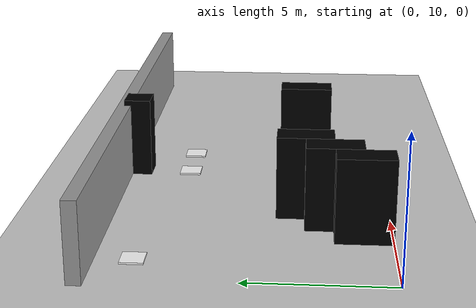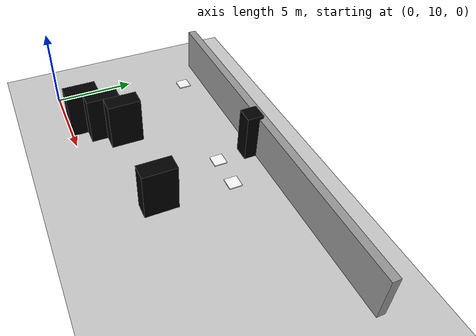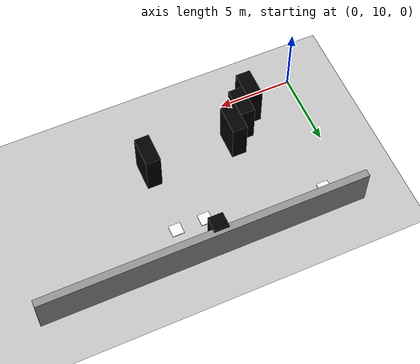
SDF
<sdf version="1.7">
 <world name="default">
  <model name="ground_plane">
   <static>1</static>
   <link name="link">
    <collision name="collision">
     <geometry><plane><normal>0 0 1</normal><size>100 100</size></plane></geometry>
     <surface><friction><ode><mu>100</mu><mu2>50</mu2></ode></friction></surface>
    </collision>
    <visual name="visual">
     <cast_shadows>0</cast_shadows>
     <geometry><plane><normal>0 0 1</normal><size>100 100</size></plane></geometry>
     <material>
      <script><uri>file://media/materials/scripts/gazebo.material</uri><name>Gazebo/Grey</name></script>
     </material>
    </visual>
   </link>
  </model>
  <model name="grey_wall_22_0">
   <link name="link">
    <pose>0 0 1.4 0 -0 0</pose>
    <inertial>
     <mass>1</mass>
     <inertia><ixx>1</ixx><ixy>0</ixy><ixz>0</ixz><iyy>1</iyy><iyz>0</iyz><izz>1</izz></inertia>
    </inertial>
    <visual name="visual">
     <cast_shadows>0</cast_shadows>
     <geometry><box><size>22 0.5 2.8</size></box></geometry>
     <material>
      <script>
       <uri>model://grey_wall/materials/scripts</uri>
       <uri>model://grey_wall/materials/textures</uri>
       <name>vrc/grey_wall</name>
      </script>
      <shader type="vertex"><normal_map>__default__</normal_map></shader>
      <ambient>1 1 1 1</ambient>
      <diffuse>1 1 1 1</diffuse>
      <specular>0 0 0 1</specular>
      <emissive>0 0 0 1</emissive>
     </material>
    </visual>
    <collision name="collision">
     <geometry><box><size>22 0.5 2.8</size></box></geometry>
     <surface>
      <friction>
       <ode><mu>1</mu><mu2>1</mu2><fdir1>0 0 0</fdir1><slip1>0</slip1><slip2>0</slip2></ode>
       <torsional>
        <coefficient>1</coefficient>
        <patch_radius>0</patch_radius>
        <surface_radius>0</surface_radius>
        <use_patch_radius>1</use_patch_radius>
        <ode><slip>0</slip></ode>
       </torsional>
      </friction>
      <bounce><restitution_coefficient>0</restitution_coefficient><threshold>1e+06</threshold></bounce>
      <contact>
       <collide_without_contact>0</collide_without_contact>
       <collide_without_contact_bitmask>1</collide_without_contact_bitmask>
       <collide_bitmask>1</collide_bitmask>
       <ode>
        <soft_cfm>0</soft_cfm>
        <soft_erp>0.2</soft_erp>
        <kp>1e+13</kp>
        <kd>1</kd>
        <max_vel>0.01</max_vel>
        <min_depth>0</min_depth>
       </ode>
       <bullet>
        <split_impulse>1</split_impulse>
        <split_impulse_penetration_threshold>-0.01</split_impulse_penetration_threshold>
        <soft_cfm>0</soft_cfm>
        <soft_erp>0.2</soft_erp>
        <kp>1e+13</kp>
        <kd>1</kd>
       </bullet>
      </contact>
     </surface>
    </collision>
   </link>
   <static>1</static>
   <pose>10.5 20 0 0 -0 0</pose>
  </model>
  <model name="brick_black_1x2_3">
   <link name="chassis">
    <pose>0 0 1.5 0 -0 0</pose>
    <inertial>
     <mass>1</mass>
     <inertia><ixx>1</ixx><ixy>0</ixy><ixz>0</ixz><iyy>1</iyy><iyz>0</iyz><izz>1</izz></inertia>
    </inertial>
    <visual name="visual">
     <geometry><mesh><uri>model://brick_box_3x1x3/meshes/simple_box.dae</uri><scale>1 2 3</scale></mesh></geometry>
     <material>
      <script>
       <uri>model://brick_box_3x1x3/materials/scripts</uri>
       <uri>model://brick_box_3x1x3/materials/textures</uri>
       <name>BrickBox/Diffuse</name>
      </script>
      <shader type="vertex"><normal_map>__default__</normal_map></shader>
      <ambient>0 0 0 1</ambient>
      <diffuse>0 0 0 1</diffuse>
      <specular>0 0 0 1</specular>
      <emissive>0 0 0 1</emissive>
      <lighting>1</lighting>
     </material>
    </visual>
    <collision name="collision">
     <geometry><box><size>1 2 3</size></box></geometry>
     <surface>
      <friction>
       <ode><mu>1</mu><mu2>1</mu2><fdir1>0 0 0</fdir1><slip1>0</slip1><slip2>0</slip2></ode>
       <torsional>
        <coefficient>1</coefficient>
        <patch_radius>0</patch_radius>
        <surface_radius>0</surface_radius>
        <use_patch_radius>1</use_patch_radius>
        <ode><slip>0</slip></ode>
       </torsional>
      </friction>
      <bounce><restitution_coefficient>0</restitution_coefficient><threshold>1e+06</threshold></bounce>
      <contact>
       <collide_without_contact>0</collide_without_contact>
       <collide_without_contact_bitmask>1</collide_without_contact_bitmask>
       <collide_bitmask>1</collide_bitmask>
       <ode>
        <soft_cfm>0</soft_cfm>
        <soft_erp>0.2</soft_erp>
        <kp>1e+13</kp>
        <kd>1</kd>
        <max_vel>0.01</max_vel>
        <min_depth>0</min_depth>
       </ode>
       <bullet>
        <split_impulse>1</split_impulse>
        <split_impulse_penetration_threshold>-0.01</split_impulse_penetration_threshold>
        <soft_cfm>0</soft_cfm>
        <soft_erp>0.2</soft_erp>
        <kp>1e+13</kp>
        <kd>1</kd>
       </bullet>
      </contact>
     </surface>
    </collision>
   </link>
   <static>1</static>
   <pose>11.5 13 0 0 -0 0</pose>
  </model>
  <model name="brick_black_1x2_4">
   <link name="chassis">
    <pose>0 0 1.5 0 -0 0</pose>
    <inertial>
     <mass>1</mass>
     <inertia><ixx>1</ixx><ixy>0</ixy><ixz>0</ixz><iyy>1</iyy><iyz>0</iyz><izz>1</izz></inertia>
    </inertial>
    <visual name="visual">
     <geometry><mesh><uri>model://brick_box_3x1x3/meshes/simple_box.dae</uri><scale>1 2 3</scale></mesh></geometry>
     <material>
      <script>
       <uri>model://brick_box_3x1x3/materials/scripts</uri>
       <uri>model://brick_box_3x1x3/materials/textures</uri>
       <name>BrickBox/Diffuse</name>
      </script>
      <shader type="vertex"><normal_map>__default__</normal_map></shader>
      <ambient>0 0 0 1</ambient>
      <diffuse>0 0 0 1</diffuse>
      <specular>0 0 0 1</specular>
      <emissive>0 0 0 1</emissive>
      <lighting>1</lighting>
     </material>
    </visual>
    <collision name="collision">
     <geometry><box><size>1 2 3</size></box></geometry>
     <surface>
      <friction>
       <ode><mu>1</mu><mu2>1</mu2><fdir1>0 0 0</fdir1><slip1>0</slip1><slip2>0</slip2></ode>
       <torsional>
        <coefficient>1</coefficient>
        <patch_radius>0</patch_radius>
        <surface_radius>0</surface_radius>
        <use_patch_radius>1</use_patch_radius>
        <ode><slip>0</slip></ode>
       </torsional>
      </friction>
      <bounce><restitution_coefficient>0</restitution_coefficient><threshold>1e+06</threshold></bounce>
      <contact>
       <collide_without_contact>0</collide_without_contact>
       <collide_without_contact_bitmask>1</collide_without_contact_bitmask>
       <collide_bitmask>1</collide_bitmask>
       <ode>
        <soft_cfm>0</soft_cfm>
        <soft_erp>0.2</soft_erp>
        <kp>1e+13</kp>
        <kd>1</kd>
        <max_vel>0.01</max_vel>
        <min_depth>0</min_depth>
       </ode>
       <bullet>
        <split_impulse>1</split_impulse>
        <split_impulse_penetration_threshold>-0.01</split_impulse_penetration_threshold>
        <soft_cfm>0</soft_cfm>
        <soft_erp>0.2</soft_erp>
        <kp>1e+13</kp>
        <kd>1</kd>
       </bullet>
      </contact>
     </surface>
    </collision>
   </link>
   <static>1</static>
   <pose>5.5 13 0 0 -0 0</pose>
  </model>
  <model name="brick_black_1x2_5">
   <link name="chassis">
    <pose>0 0 1.5 0 -0 0</pose>
    <inertial>
     <mass>1</mass>
     <inertia><ixx>1</ixx><ixy>0</ixy><ixz>0</ixz><iyy>1</iyy><iyz>0</iyz><izz>1</izz></inertia>
    </inertial>
    <visual name="visual">
     <geometry><mesh><uri>model://brick_box_3x1x3/meshes/simple_box.dae</uri><scale>1 2 3</scale></mesh></geometry>
     <material>
      <script>
       <uri>model://brick_box_3x1x3/materials/scripts</uri>
       <uri>model://brick_box_3x1x3/materials/textures</uri>
       <name>BrickBox/Diffuse</name>
      </script>
      <shader type="vertex"><normal_map>__default__</normal_map></shader>
      <ambient>0 0 0 1</ambient>
      <diffuse>0 0 0 1</diffuse>
      <specular>0 0 0 1</specular>
      <emissive>0 0 0 1</emissive>
      <lighting>1</lighting>
     </material>
    </visual>
    <collision name="collision">
     <geometry><box><size>1 2 3</size></box></geometry>
     <surface>
      <friction>
       <ode><mu>1</mu><mu2>1</mu2><fdir1>0 0 0</fdir1><slip1>0</slip1><slip2>0</slip2></ode>
       <torsional>
        <coefficient>1</coefficient>
        <patch_radius>0</patch_radius>
        <surface_radius>0</surface_radius>
        <use_patch_radius>1</use_patch_radius>
        <ode><slip>0</slip></ode>
       </torsional>
      </friction>
      <bounce><restitution_coefficient>0</restitution_coefficient><threshold>1e+06</threshold></bounce>
      <contact>
       <collide_without_contact>0</collide_without_contact>
       <collide_without_contact_bitmask>1</collide_without_contact_bitmask>
       <collide_bitmask>1</collide_bitmask>
       <ode>
        <soft_cfm>0</soft_cfm>
        <soft_erp>0.2</soft_erp>
        <kp>1e+13</kp>
        <kd>1</kd>
        <max_vel>0.01</max_vel>
        <min_depth>0</min_depth>
       </ode>
       <bullet>
        <split_impulse>1</split_impulse>
        <split_impulse_penetration_threshold>-0.01</split_impulse_penetration_threshold>
        <soft_cfm>0</soft_cfm>
        <soft_erp>0.2</soft_erp>
        <kp>1e+13</kp>
        <kd>1</kd>
       </bullet>
      </contact>
     </surface>
    </collision>
   </link>
   <static>1</static>
   <pose>4.5 12 0 0 -0 0</pose>
  </model>
  <model name="brick_black_1x2_6">
   <link name="chassis">
    <pose>0 0 1.5 0 -0 0</pose>
    <inertial>
     <mass>1</mass>
     <inertia><ixx>1</ixx><ixy>0</ixy><ixz>0</ixz><iyy>1</iyy><iyz>0</iyz><izz>1</izz></inertia>
    </inertial>
    <visual name="visual">
     <geometry><mesh><uri>model://brick_box_3x1x3/meshes/simple_box.dae</uri><scale>1 2 3</scale></mesh></geometry>
     <material>
      <script>
       <uri>model://brick_box_3x1x3/materials/scripts</uri>
       <uri>model://brick_box_3x1x3/materials/textures</uri>
       <name>BrickBox/Diffuse</name>
      </script>
      <shader type="vertex"><normal_map>__default__</normal_map></shader>
      <ambient>0 0 0 1</ambient>
      <diffuse>0 0 0 1</diffuse>
      <specular>0 0 0 1</specular>
      <emissive>0 0 0 1</emissive>
      <lighting>1</lighting>
     </material>
    </visual>
    <collision name="collision">
     <geometry><box><size>1 2 3</size></box></geometry>
     <surface>
      <friction>
       <ode><mu>1</mu><mu2>1</mu2><fdir1>0 0 0</fdir1><slip1>0</slip1><slip2>0</slip2></ode>
       <torsional>
        <coefficient>1</coefficient>
        <patch_radius>0</patch_radius>
        <surface_radius>0</surface_radius>
        <use_patch_radius>1</use_patch_radius>
        <ode><slip>0</slip></ode>
       </torsional>
      </friction>
      <bounce><restitution_coefficient>0</restitution_coefficient><threshold>1e+06</threshold></bounce>
      <contact>
       <collide_without_contact>0</collide_without_contact>
       <collide_without_contact_bitmask>1</collide_without_contact_bitmask>
       <collide_bitmask>1</collide_bitmask>
       <ode>
        <soft_cfm>0</soft_cfm>
        <soft_erp>0.2</soft_erp>
        <kp>1e+13</kp>
        <kd>1</kd>
        <max_vel>0.01</max_vel>
        <min_depth>0</min_depth>
       </ode>
       <bullet>
        <split_impulse>1</split_impulse>
        <split_impulse_penetration_threshold>-0.01</split_impulse_penetration_threshold>
        <soft_cfm>0</soft_cfm>
        <soft_erp>0.2</soft_erp>
        <kp>1e+13</kp>
        <kd>1</kd>
       </bullet>
      </contact>
     </surface>
    </collision>
   </link>
   <static>1</static>
   <pose>3.5 11 0 0 -0 0</pose>
  </model>
  <model name="brick_black_1x1_4">
   <link name="chassis">
    <pose>0 0 1.5 0 -0 0</pose>
    <inertial>
     <mass>1</mass>
     <inertia><ixx>1</ixx><ixy>0</ixy><ixz>0</ixz><iyy>1</iyy><iyz>0</iyz><izz>1</izz></inertia>
    </inertial>
    <visual name="visual">
     <geometry><mesh><uri>model://brick_box_3x1x3/meshes/simple_box.dae</uri><scale>1 1 3</scale></mesh></geometry>
     <material>
      <script>
       <uri>model://brick_box_3x1x3/materials/scripts</uri>
       <uri>model://brick_box_3x1x3/materials/textures</uri>
       <name>BrickBox/Diffuse</name>
      </script>
      <shader type="vertex"><normal_map>__default__</normal_map></shader>
      <ambient>0 0 0 1</ambient>
      <diffuse>0 0 0 1</diffuse>
      <specular>0 0 0 1</specular>
      <emissive>0 0 0 1</emissive>
      <lighting>1</lighting>
     </material>
    </visual>
    <collision name="collision">
     <geometry><box><size>1 1 3</size></box></geometry>
     <surface>
      <friction>
       <ode><mu>1</mu><mu2>1</mu2><fdir1>0 0 0</fdir1><slip1>0</slip1><slip2>0</slip2></ode>
       <torsional>
        <coefficient>1</coefficient>
        <patch_radius>0</patch_radius>
        <surface_radius>0</surface_radius>
        <use_patch_radius>1</use_patch_radius>
        <ode><slip>0</slip></ode>
       </torsional>
      </friction>
      <bounce><restitution_coefficient>0</restitution_coefficient><threshold>1e+06</threshold></bounce>
      <contact>
       <collide_without_contact>0</collide_without_contact>
       <collide_without_contact_bitmask>1</collide_without_contact_bitmask>
       <collide_bitmask>1</collide_bitmask>
       <ode>
        <soft_cfm>0</soft_cfm>
        <soft_erp>0.2</soft_erp>
        <kp>1e+13</kp>
        <kd>1</kd>
        <max_vel>0.01</max_vel>
        <min_depth>0</min_depth>
       </ode>
       <bullet>
        <split_impulse>1</split_impulse>
        <split_impulse_penetration_threshold>-0.01</split_impulse_penetration_threshold>
        <soft_cfm>0</soft_cfm>
        <soft_erp>0.2</soft_erp>
        <kp>1e+13</kp>
        <kd>1</kd>
       </bullet>
      </contact>
     </surface>
    </collision>
   </link>
   <static>1</static>
   <pose>9.5 19.5 0 0 -0 0</pose>
  </model>
  <model name="number4">
   <link name="link">
    <inertial>
     <mass>1</mass>
     <inertia><ixx>1</ixx><ixy>0</ixy><ixz>0</ixz><iyy>1</iyy><iyz>0</iyz><izz>1</izz></inertia>
    </inertial>
    <visual name="visual">
     <geometry><mesh><uri>model://number1/meshes/number.dae</uri><scale>1 1 0.1</scale></mesh></geometry>
     <material>
      <script>
       <uri>model://number4/materials/scripts</uri>
       <uri>model://number4/materials/textures</uri>
       <name>Number/Four</name>
      </script>
      <shader type="pixel"><normal_map>__default__</normal_map></shader>
      <ambient>1 1 1 1</ambient>
      <diffuse>1 1 1 1</diffuse>
      <specular>0 0 0 1</specular>
      <emissive>0 0 0 1</emissive>
     </material>
    </visual>
   </link>
   <static>1</static>
   <pose>1.5 18.5 0 0 -0 0</pose>
  </model>
  <model name="number5">
   <link name="link">
    <inertial>
     <mass>1</mass>
     <inertia><ixx>1</ixx><ixy>0</ixy><ixz>0</ixz><iyy>1</iyy><iyz>0</iyz><izz>1</izz></inertia>
    </inertial>
    <visual name="visual">
     <geometry><mesh><uri>model://number1/meshes/number.dae</uri><scale>1 1 0.1</scale></mesh></geometry>
     <material>
      <script>
       <uri>model://number5/materials/scripts</uri>
       <uri>model://number5/materials/textures</uri>
       <name>Number/Five</name>
      </script>
      <shader type="pixel"><normal_map>__default__</normal_map></shader>
      <ambient>1 1 1 1</ambient>
      <diffuse>1 1 1 1</diffuse>
      <specular>0 0 0 1</specular>
      <emissive>0 0 0 1</emissive>
     </material>
    </visual>
   </link>
   <static>1</static>
   <pose>11.5 17.5 0 0 -0 3.14</pose>
  </model>
  <model name="number6">
   <link name="link">
    <inertial>
     <mass>1</mass>
     <inertia><ixx>1</ixx><ixy>0</ixy><ixz>0</ixz><iyy>1</iyy><iyz>0</iyz><izz>1</izz></inertia>
    </inertial>
    <visual name="visual">
     <geometry><mesh><uri>model://number1/meshes/number.dae</uri><scale>1 1 0.1</scale></mesh></geometry>
     <material>
      <script>
       <uri>model://number6/materials/scripts</uri>
       <uri>model://number6/materials/textures</uri>
       <name>Number/Six</name>
      </script>
      <shader type="pixel"><normal_map>__default__</normal_map></shader>
      <ambient>1 1 1 1</ambient>
      <diffuse>1 1 1 1</diffuse>
      <specular>0 0 0 1</specular>
      <emissive>0 0 0 1</emissive>
     </material>
    </visual>
   </link>
   <static>1</static>
   <pose>9.5 17.5 0 0 -0 3.14</pose>
  </model>
 </world>
</sdf>
